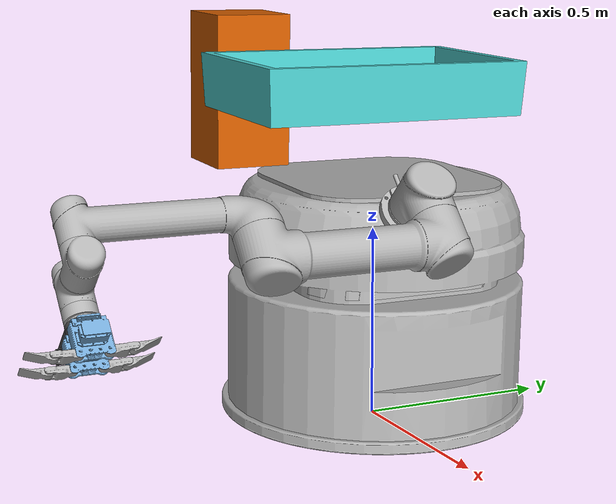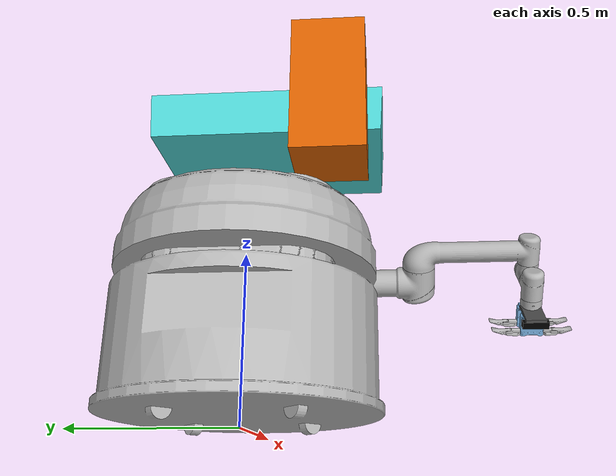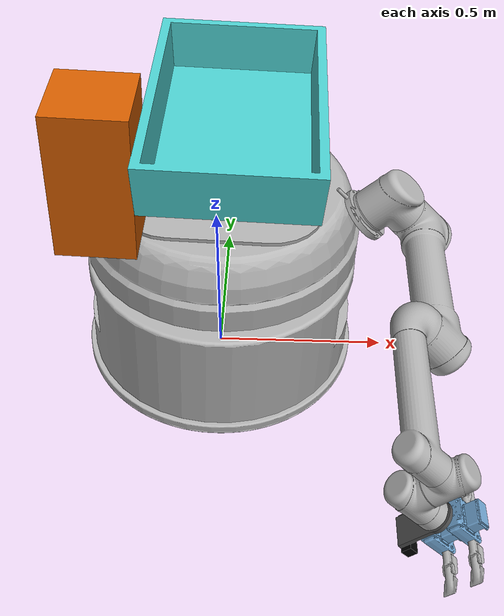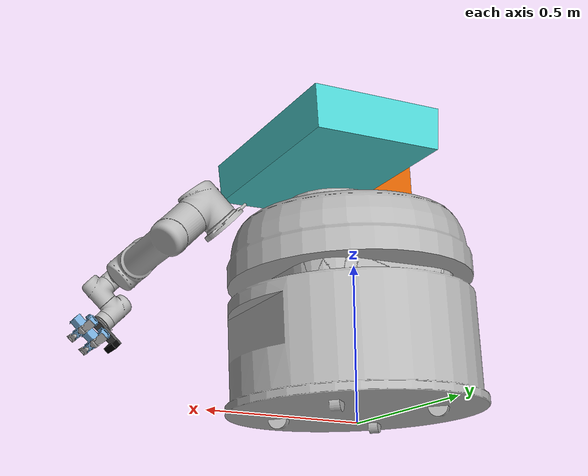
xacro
<robot xmlns:xacro="http://www.ros.org/wiki/xacro" name="daihen_ur5">

<!-- UR5 attachment type -->
<xacro:arg name="maue_ur5" default="false"/>
<xacro:arg name="mayoko_ur5" default="false"/>
<xacro:arg name="naname_ur5" default="true"/>

<property name="ur5_mount_z_offset" value="0.0"/>
<property name="ur5_base_radius" value="0.07"/>

<property name="container_mount_offset" value="0.388"/>
<property name="container_short_side" value="0.41"/>

<property name="daihen_boad_offset" value="0.25"/>

<property name="container_z_offset" value="0.169"/>
<property name="container_x_offset" value="0.0"/>

<property name="cylinder_length" value="0.0"/>

<xacro:include filename="$(find fcsc_description)/model/materials.urdf.xacro" />
<xacro:include filename="$(find fcsc_description)/model/fcsc_gazebo.xacro" />
<xacro:include filename="$(find fcsc_description)/model/container.urdf.xacro" />
<xacro:include filename="$(find fcsc_description)/model/create_box.xacro" />
<xacro:include filename="$(find fcsc_description)/model/my_ezgripper_dual_gen2.urdf.xacro"/>
<xacro:include filename="$(find ur_description)/urdf/ur5.urdf.xacro" />
<xacro:include filename="$(find fcsc_description)/model/robot.urdf.xacro" />

<!-- arm -->
<xacro:if value="$(arg naname_ur5)">
  <xacro:ur5_robot
    prefix=""
    joint_limited="true"
    elbow_joint_lower_limit="${0}" elbow_joint_upper_limit="${pi}"
    wrist_1_lower_limit="0" wrist_1_upper_limit="${2*pi}"
    />
</xacro:if>
<xacro:if value="$(arg maue_ur5)">
  <xacro:ur5_robot
    prefix=""
    joint_limited="true"
    elbow_joint_lower_limit="0" elbow_joint_upper_limit="${pi}"
    wrist_1_lower_limit="${-2*pi}" wrist_1_upper_limit="${0}"
    />
</xacro:if>

<link name="gripper_link"/>
<link name="gripper_wrap_link"/>

<!-- ezgripper dual * 2 -->
<ezgripper_dual prefix="top" parent_link="camera_attachment_1_link" mimic="false" parent_prefix="top">
  <origin xyz="${0.01 + cylinder_length} 0 ${0.065/2}" rpy="0 0 0"/>
</ezgripper_dual>
<ezgripper_dual prefix="bottom" parent_link="camera_attachment_1_link"  mimic="false" parent_prefix="bottom">
  <origin xyz="${0.01+ cylinder_length} 0 ${-0.065/2}" rpy="0 0 0"/>
</ezgripper_dual>
<joint name="gripper_link_joint" type="fixed">
  <parent link="top_ezgripper_palm_link"/>
  <child link="gripper_link"/>
  <origin xyz="0.178 0 ${-0.065/2}" rpy="0 0 0"/>
</joint>
<joint name="gripper_wrap_joint" type="fixed">
  <parent link="top_ezgripper_palm_link"/>
  <child link="gripper_wrap_link"/>
  <origin xyz="0.085 0 ${-0.065/2}" rpy="0 0 0"/>
</joint>

<xacro:use_RealSenseD435_ur5 attachment_depth="0.01" attachment_width="0.07" attachment_height="${0.1125+0.025}"/>

<joint name="arm_to_kinect" type="fixed">
  <parent link="ee_link"/>
  <child link="camera_attachment_1_link"/>
  <origin xyz="0 0 0" rpy="0 0 0"/>
</joint>

<joint name="ur5_base" type="fixed">
  <parent link="boad"/>
  <child link="base_link"/>
  <!-- NANAME -->
  <xacro:if value="$(arg naname_ur5)">
    <origin rpy="${-M_PI/4} 0 ${-M_PI/2}" xyz="${0.37556} ${-0.11} ${daihen_boad_offset-0.027279+0.005}"/>
  </xacro:if>

  <!-- MAUE -->
  <!-- Daihe Mobile Robot -->

  <!-- KDEL(F507) Demo -->
  <xacro:if value="$(arg maue_ur5)">
    <origin rpy="0 0 ${M_PI}" xyz="${0.7/2-0.24} 0 ${daihen_boad_offset+0.05}"/>
  </xacro:if>

  <!-- MAYOKO -->
  <xacro:if value="$(arg mayoko_ur5)">
    <origin rpy="${-M_PI/2} 0 ${-M_PI/2}" xyz="${0.27} ${-ur5_base_radius} ${daihen_boad_offset + ur5_base_radius}"/>
  </xacro:if>

</joint>

<!-- KDEL(F507) Demo Table -->
<xacro:if value="$(arg maue_ur5)">
  <xacro:create_box name="control_box" mass="15" x="0.7" y="0.65" z="0.69">
    <origin xyz="0 0 ${-0.69/2}" rpy="0 0 0" />
  </xacro:create_box>
  <joint name="table_fixed" type="fixed">
    <parent link="boad"/>
    <child link="control_box"/>
    <origin rpy="0 0 0" xyz="0 0 ${daihen_boad_offset+0.05}"/>
  </joint>
</xacro:if>

<!-- control box -->
<xacro:create_box name="control_box" mass="15" x="0.395" y="0.2" z="0.2">
  <origin xyz="0 0 ${0.2/2}" rpy="0 0 0" />
</xacro:create_box>
<joint name="control_box_fixed" type="fixed">
  <parent link="container"/>
  <child link="control_box"/>
  <origin rpy="0 ${M_PI/2} 0" xyz="${-0.2-0.2-0.02} ${-0.3+0.2/2} 0.03"/>
</joint>

<xacro:unless value="$(arg maue_ur5)">
  <xacro:container/>
  <joint name="container_base" type="revolute">
    <parent link="boad"/>
    <child link="container"/>
    <xacro:if value="$(arg naname_ur5)">
      <origin rpy="0 0 0" xyz="${0.54/2-container_short_side/2-0.043+0.005+0.006} ${-0.073+0.005} ${daihen_boad_offset+container_z_offset+0.008}"/>
    </xacro:if>
    <xacro:if value="$(arg maue_ur5)">
      <origin rpy="0 0 0" xyz="${-container_short_side/2} 0 ${daihen_boad_offset+container_z_offset}"/>
    </xacro:if>
    <axis xyz="0 0 1" />
    <limit lower="0" upper="0" effort="0" velocity="0"/>
    <dynamics friction="100000000000000000"/>
  </joint>
  <transmission name="container_base_trans">
    <type>transmission_interface/SimpleTransmission</type>
    <joint name="container_base">
      <hardwareInterface>hardware_interface/PositionJointInterface</hardwareInterface>
    </joint>
    <actuator name="container_base_motor">
      <hardwareInterface>hardware_interface/PositionJointInterface</hardwareInterface>
      <mechanicalReduction>1</mechanicalReduction>
    </actuator>
  </transmission>
</xacro:unless>

<gazebo>
  <plugin name="gazebo_ros_control" filename="libgazebo_ros_control.so"/>
</gazebo>

</robot>

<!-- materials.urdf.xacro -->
<robot>
  <material name="Black">
    <color rgba="0.0 0.0 0.0 1.0"/>
  </material>

  <material name="WheelBlack">
    <color rgba="${40/255} ${34/255} ${42/255} 1.0"/>
  </material>

  <material name="Blue">
    <color rgba="0.0 0.0 0.8 1.0"/>
  </material>

  <material name="SkyBlue">
    <color rgba="${116/255} ${169/255} ${214/255} 1.0"/>
  </material>

  <material name="Green">
    <color rgba="0.0 0.8 0.0 1.0"/>
  </material>

  <material name="Gray">
    <color rgba="0.7 0.7 0.7 1.0"/>
  </material>

  <material name="DarkGray">
    <color rgba="0.3 0.3 0.3 1.0"/>
  </material>

  <material name="PealGray">
    <color rgba="${140/255} ${140/255} ${140/255} 1.0"/>
  </material>

  <material name="Red">
    <color rgba="0.8 0.0 0.0 1.0"/>
  </material>

  <material name="White">
    <color rgba="1.0 1.0 1.0 1.0"/>
  </material>

  <material name="OffWhite">
    <color rgba="${255/255} ${255/255}  ${230.0/255.0} 1.0"/>
  </material>

  <material name="Milk">
    <color rgba="${180/255} ${180/255}  ${180/255} 1.0"/>
  </material>

  <material name="Yellow">
    <color rgba="0.8 0.8 0.0 1.0"/>
  </material>
</robot>

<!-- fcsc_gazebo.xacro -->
<!-- gazebo setting -->
<robot name="gazebo_setting" xmlns:xacro="http://www.ros.org/wiki/xacro">
  <xacro:macro name="use_RealSenseD435_ur5" params="attachment_height attachment_width attachment_depth">

    <link name="camera_optical_link"/>

    <link name="camera_body_link">
      <collision>
        <origin xyz="0.0 0 0" rpy="0 0 0"/>
        <geometry>
          <box size="${0.025} ${0.09} ${0.025}"/>
        </geometry>
      </collision>
      <visual>
        <origin xyz="0 0 0" rpy="0 0 0"/>
        <geometry>
          <box size="${0.025} ${0.09} ${0.025}"/>
        </geometry>
        <material name="camera_body_color">
          <color rgba="0 0 0 1.0"/>
        </material>
      </visual>
      <inertial>
        <mass value="1e-5" />
        <origin xyz="0 0 0" rpy="0 0 0"/>
        <inertia ixx="1e-6" ixy="0" ixz="0" iyy="1e-6" iyz="0" izz="1e-6" />
      </inertial>
    </link>

    <link name="camera_attachment_1_link">
      <collision>
        <origin xyz="${0.01/2} 0 ${attachment_height/2 - 0.0375}" rpy="0 0 0"/>
        <geometry>
          <box size="${attachment_depth} ${attachment_width} ${attachment_height}"/>
        </geometry>
      </collision>
      <visual>
        <origin xyz="0 0 0" rpy="0 ${pi/2.0} 0"/>
        <geometry>
          <mesh filename="package://fcsc_description/mesh/realsense_D435_mount.stl" scale="1 1 1"/>
        </geometry>
        <material name="realsense_attachment_color">
          <color rgba="0.3 0.3 0.3 1.0"/>
        </material>
      </visual>
      <inertial>
        <mass value="1e-5" />
        <origin xyz="0 0 0" rpy="0 ${pi/2.0} 0"/>
        <inertia ixx="1e-6" ixy="0" ixz="0" iyy="1e-6" iyz="0" izz="1e-6" />
      </inertial>
    </link>

    <joint name="camera_optical_joint" type="fixed">
      <parent link="camera_body_link"/>
      <child link="camera_optical_link"/>
      <origin xyz="${0.025/2} 0 0" rpy="-1.57 0 -1.57"/>
    </joint>

    <joint name="realsense_attachment_joint" type="fixed">
      <parent link="camera_attachment_1_link"/>
      <child link="camera_body_link"/>
      <origin xyz="${0.01 + 0.025/2} 0 ${0.0875}" rpy="0 0 0"/>
    </joint>

    <gazebo reference="camera_body_link">
      <selfCollide>false</selfCollide>
      <material>Gazebo/Black</material>
      <sensor type="depth" name="realsense">
        <always_on>1</always_on>
        <update_rate>10</update_rate>
        <visualize>true</visualize>
        <camera>
          <horizontal_fov>1.211222778</horizontal_fov>
          <image>
            <!-- high performance -->
            <width>640</width>
            <height>480</height>
            <format>R8G8B8</format>
          </image>
          <clip>
            <near>0.1</near>
            <far>100</far>
          </clip>
          <depth_camera>
            <output>true</output>
          </depth_camera>
        </camera>
        <plugin name="realsense_controller" filename="libgazebo_ros_openni_kinect.so">
          <alwaysOn>true</alwaysOn>
          <updateRate>10.0</updateRate>
          <cameraName>camera</cameraName>
          <frameName>camera_optical_link</frameName>
          <imageTopicName>rgb/image_raw</imageTopicName>
          <depthImageTopicName>depth/image_raw</depthImageTopicName>
          <pointCloudTopicName>depth/points</pointCloudTopicName>
          <cameraInfoTopicName>rgb/camera_info</cameraInfoTopicName>
          <depthImageCameraInfoTopicName>depth/camera_info</depthImageCameraInfoTopicName>
          <pointCloudCutoff>0.2</pointCloudCutoff>
          <pointCloudCutoffMax>5</pointCloudCutoffMax>
          <distortionK1>0.0</distortionK1>
          <distortionK2>0.0</distortionK2>
          <distortionK3>0.0</distortionK3>
          <distortionT1>0.0</distortionT1>
          <distortionT2>0.0</distortionT2>
          <CxPrime>0.0</CxPrime>
          <Cx>0.0</Cx>
          <Cy>0.0</Cy>
          <focalLength>0.0</focalLength>
        </plugin>
        </sensor>
    </gazebo>
  </xacro:macro>

  <xacro:macro name="use_hokuyo">
  <!-- *************************************** Hokuyo laser *************************************** -->
    <link name="hokuyo_link">
		  <collision>
			  <origin xyz="0 0 0" rpy="0 0 0"/>
			  <geometry>
				  <cylinder length="0.05" radius="0.025"/>
			  </geometry>
		  </collision>
		  <visual>
			  <origin xyz="0 0 0" rpy="0 0 0"/>
			  <geometry>
				  <cylinder length="0.05" radius="0.025"/>
			  </geometry>
		  </visual>
		  <inertial>
			  <mass value="1e-5" />
			  <origin xyz="0 0 0" rpy="0 0 0"/>
			  <inertia ixx="1e-6" ixy="0" ixz="0" iyy="1e-6" iyz="0" izz="1e-6" />
		  </inertial>
    </link>
    <joint name="hokuyo_joint" type="fixed">
		  <!--parent link="base_link"/-->
		  <parent link="riser"/>
		  <child link="hokuyo_link"/>
		  <!--origin xyz="0.13 0 0.15" rpy="0 0 0"/-->
		  <origin xyz="0.025 0 0.3" rpy="0 0 0"/>
    </joint>
	  <gazebo reference="hokuyo_link">
		  <material>Gazebo/Black</material>
		  <sensor type="ray" name="laser">
			  <pose>0 0 0 0 0 0</pose>
			  <visualize>true</visualize>
			  <update_rate>40</update_rate>
			  <ray>
				  <scan>
					  <horizontal>
						  <samples>720</samples>
						  <resolution>1</resolution>
						  <min_angle>-1.570796327</min_angle>
						  <max_angle>1.570796327</max_angle>
					  </horizontal>
				  </scan>
				  <range>
					  <min>0.10</min>
					  <max>10.0</max>
					  <resolution>0.01</resolution>
				  </range>
				  <noise>
					  <type>Gaussian</type>
					  <mean>0.0</mean>
					  <stddev>0.01</stddev>
				  </noise>
			  </ray>
			  <plugin name="hokuyo_laser" filename="libgazebo_ros_laser.so">
				  <topicName>/scan</topicName>
				  <frameName>hokuyo_link</frameName>
			  </plugin>
		  </sensor>
	  </gazebo>
	</xacro:macro>

  <xacro:macro name="use_hokuyo_vertical">
  <!-- ***************************** Hokuyo Vertical laser ********************************** -->
    <link name="hokuyo_vertical_link">
		  <collision>
			  <origin xyz="0 0 0" rpy="0 0 0"/>
			  <geometry>
				  <cylinder length="0.05" radius="0.025"/>
			  </geometry>
		  </collision>
		  <visual>
			  <origin xyz="0 0 0" rpy="0 0 0"/>
			  <geometry>
				  <cylinder length="0.05" radius="0.025"/>
			  </geometry>
		  </visual>
		  <inertial>
			  <mass value="1e-5" />
			  <origin xyz="0 0 0" rpy="0 0 0"/>
			  <inertia ixx="1e-6" ixy="0" ixz="0" iyy="1e-6" iyz="0" izz="1e-6" />
		  </inertial>
    </link>
    <joint name="hokuyo_vertical_joint" type="fixed">
		  <parent link="riser"/>
		  <child link="hokuyo_vertical_link"/>
		  <origin xyz="0.025 0 0.5" rpy="0 1.57079 0"/>
    </joint>
	  <gazebo reference="hokuyo_vertical_link">
		  <material>Gazebo/Black</material>
		  <sensor type="ray" name="vertical_laser">
			  <pose>0 0 0 0 0 0</pose>
			  <visualize>true</visualize>
			  <update_rate>40</update_rate>
			  <ray>
				  <scan>
					  <horizontal>
						  <samples>720</samples>
						  <resolution>1</resolution>
						  <min_angle>-1.570796327</min_angle>
						  <max_angle>1.570796327</max_angle>
					  </horizontal>
				  </scan>
				  <range>
					  <min>0.10</min>
					  <max>10.0</max>
					  <resolution>0.01</resolution>
				  </range>
				  <noise>
					  <type>Gaussian</type>
					  <mean>0.0</mean>
					  <stddev>0.01</stddev>
				  </noise>
			  </ray>
			  <plugin name="hokuyo_vertical_laser" filename="libgazebo_ros_laser.so">
				  <topicName>/vertical_scan</topicName>
				  <frameName>hokuyo_vertical_link</frameName>
			  </plugin>
		  </sensor>
	  </gazebo>
	</xacro:macro>

	<xacro:macro name="use_kinect_arm">
	<!-- ********************************** Kinect [arm or gripper] ***************************************** -->
	  <joint name="kinect_arm_joint" type="fixed">
		  <parent link="link6"/>
		  <child link="kinect_base_link"/>
		  <!--origin xyz="0.5 0 0.2" rpy="0 0 0"/-->
		  <origin xyz="0 0 ${0.1/2}" rpy="0 0 0"/>
	  </joint>

	  <joint name="kinect_joint" type="fixed">
		  <parent link="kinect_base_link"/>
		  <child link="kinect_link"/>
		  <origin xyz="0 0 0" rpy="-1.57 0 -1.57"/>
	  </joint>

	  <link name="kinect_base_link">
		  <collision>
			  <origin xyz="0 0 0" rpy="0 0 0"/>
			  <geometry>
				  <cylinder length="0.05" radius="0.025"/>
			  </geometry>
		  </collision>
		  <visual>
			  <origin xyz="0 0 0" rpy="0 0 0"/>
			  <geometry>
				  <cylinder length="0.05" radius="0.025"/>
			  </geometry>
		  </visual>
		  <inertial>
			  <mass value="1e-5" />
			  <origin xyz="0 0 0" rpy="0 0 0"/>
			  <inertia ixx="1e-6" ixy="0" ixz="0" iyy="1e-6" iyz="0" izz="1e-6" />
		  </inertial>
	  </link>

	  <link name="kinect_link"/>

	  <gazebo reference="kinect_base_link">
      <selfCollide>false</selfCollide>
		  <material>Gazebo/Black</material>
		  <sensor type="depth" name="kinect">
			  <always_on>1</always_on>
			  <visualize>true</visualize>
			  <camera>
			  <horizontal_fov>1.047</horizontal_fov>
			  <image>
				  <width>640</width>
				  <height>480</height>
				  <format>R8G8B8</format>
			  </image>
			  <clip>
				  <near>0.1</near>
				  <far>100</far>
			  </clip>
			  </camera>
			  <plugin name="kinect_controller" filename="libgazebo_ros_openni_kinect.so">
				  <alwaysOn>true</alwaysOn>
				  <updateRate>10.0</updateRate>
				  <cameraName>kinect</cameraName>
				  <frameName>kinect_link</frameName>
				  <imageTopicName>rgb/image_raw</imageTopicName>
				  <depthImageTopicName>depth/image_raw</depthImageTopicName>
				  <pointCloudTopicName>depth/points</pointCloudTopicName>
				  <cameraInfoTopicName>rgb/camera_info</cameraInfoTopicName>
				  <depthImageCameraInfoTopicName>depth/camera_info</depthImageCameraInfoTopicName>
				  <pointCloudCutoff>0.4</pointCloudCutoff>
				  <hackBaseline>0.07</hackBaseline>
				  <distortionK1>0.0</distortionK1>
				  <distortionK2>0.0</distortionK2>
				  <distortionK3>0.0</distortionK3>
				  <distortionT1>0.0</distortionT1>
				  <distortionT2>0.0</distortionT2>
				  <CxPrime>0.0</CxPrime>
				  <Cx>0.0</Cx>
				  <Cy>0.0</Cy>
				  <focalLength>0.0</focalLength>
			  </plugin>
			  </sensor>
	  </gazebo>
	</xacro:macro>

	<xacro:macro name="use_kinect_riser">
	<!-- ********************************** Kinect [riser] ***************************************** -->
	  <joint name="kinect_riser_joint" type="fixed">
		  <parent link="riser"/>
		  <child link="kinect_base_link2"/>
		  <origin xyz="0.025 0 0.5" rpy="0 0 0"/>
	  </joint>
	  <joint name="kinect_joint2" type="fixed">
		  <parent link="kinect_base_link2"/>
		  <child link="kinect_link2"/>
		  <origin xyz="0 0 0" rpy="-1.57 0 -1.57"/>
	  </joint>

	  <link name="kinect_base_link2">
		  <collision>
			  <origin xyz="0 0 0" rpy="0 0 0"/>
			  <geometry>
				  <cylinder length="0.05" radius="0.025"/>
			  </geometry>
		  </collision>
		  <visual>
			  <origin xyz="0 0 0" rpy="0 0 0"/>
			  <geometry>
				  <cylinder length="0.05" radius="0.025"/>
			  </geometry>
		  </visual>
		  <inertial>
			  <mass value="1e-5" />
			  <origin xyz="0 0 0" rpy="0 0 0"/>
			  <inertia ixx="1e-6" ixy="0" ixz="0" iyy="1e-6" iyz="0" izz="1e-6" />
		  </inertial>
	  </link>

	  <link name="kinect_link2"/>

	  <gazebo reference="kinect_base_link2">
		  <material>Gazebo/Black</material>
		  <sensor type="depth" name="kinect2">
			  <always_on>1</always_on>
			  <visualize>true</visualize>
			  <camera>
			  <horizontal_fov>1.047</horizontal_fov>
			  <image>
				  <width>640</width>
				  <height>480</height>
				  <format>R8G8B8</format>
			  </image>
			  <clip>
				  <near>0.1</near>
				  <far>100</far>
			  </clip>
			  </camera>
			  <plugin name="kinect_controller_for_riser" filename="libgazebo_ros_openni_kinect.so">
				  <alwaysOn>true</alwaysOn>
				  <updateRate>10.0</updateRate>
				  <cameraName>kinect2</cameraName>
				  <frameName>kinect_link2</frameName>
				  <imageTopicName>rgb/image_raw</imageTopicName>
				  <depthImageTopicName>depth/image_raw</depthImageTopicName>
				  <pointCloudTopicName>depth/points</pointCloudTopicName>
				  <cameraInfoTopicName>rgb/camera_info</cameraInfoTopicName>
				  <depthImageCameraInfoTopicName>depth/camera_info</depthImageCameraInfoTopicName>
				  <pointCloudCutoff>0.4</pointCloudCutoff>
				  <hackBaseline>0.07</hackBaseline>
				  <distortionK1>0.0</distortionK1>
				  <distortionK2>0.0</distortionK2>
				  <distortionK3>0.0</distortionK3>
				  <distortionT1>0.0</distortionT1>
				  <distortionT2>0.0</distortionT2>
				  <CxPrime>0.0</CxPrime>
				  <Cx>0.0</Cx>
				  <Cy>0.0</Cy>
				  <focalLength>0.0</focalLength>
			  </plugin>
			  </sensor>
	  </gazebo>
  </xacro:macro>

	<xacro:macro name="use_kinect_ancle">
	<!-- ********************************** Kinect [arm or gripper] ***************************************** -->
	  <joint name="kinect_ancle_joint" type="fixed">
		  <parent link="link6"/>
		  <child link="kinect_base_link"/>
		  <origin xyz="${0.05/2} 0 ${0.04/2}" rpy="0 0 0"/>
	  </joint>

	  <joint name="kinect_joint" type="fixed">
		  <parent link="kinect_base_link"/>
		  <child link="kinect_link"/>
		  <origin xyz="0 0 0" rpy="-1.57 0 -1.57"/>
	  </joint>

	  <link name="kinect_base_link">
		  <collision>
			  <origin xyz="0 0 ${0.05/2}" rpy="0 0 0"/>
			  <geometry>
				  <cylinder length="0.05" radius="0.025"/>
			  </geometry>
		  </collision>
		  <visual>
			  <origin xyz="0 0 ${0.05/2}" rpy="0 0 0"/>
			  <geometry>
				  <cylinder length="0.05" radius="0.025"/>
			  </geometry>
		  </visual>
		  <inertial>
			  <mass value="1e-5" />
			  <origin xyz="0 0 ${0.05/2}" rpy="0 0 0"/>
			  <inertia ixx="1e-6" ixy="0" ixz="0" iyy="1e-6" iyz="0" izz="1e-6" />
		  </inertial>
	  </link>

	  <link name="kinect_link"/>

	  <gazebo reference="kinect_base_link">
      <selfCollide>false</selfCollide>
		  <material>Gazebo/Black</material>
		  <sensor type="depth" name="kinect">
			  <always_on>1</always_on>
			  <visualize>true</visualize>
			  <camera>
			  <horizontal_fov>1.047</horizontal_fov>
			  <image>
				  <width>640</width>
				  <height>480</height>
				  <format>R8G8B8</format>
			  </image>
			  <clip>
				  <near>0.1</near>
				  <far>100</far>
			  </clip>
			  </camera>
			  <plugin name="kinect_controller" filename="libgazebo_ros_openni_kinect.so">
				  <alwaysOn>true</alwaysOn>
				  <updateRate>10.0</updateRate>
				  <cameraName>kinect</cameraName>
				  <frameName>kinect_link</frameName>
				  <imageTopicName>rgb/image_raw</imageTopicName>
				  <depthImageTopicName>depth/image_raw</depthImageTopicName>
				  <pointCloudTopicName>depth/points</pointCloudTopicName>
				  <cameraInfoTopicName>rgb/camera_info</cameraInfoTopicName>
				  <depthImageCameraInfoTopicName>depth/camera_info</depthImageCameraInfoTopicName>
				  <pointCloudCutoff>0.4</pointCloudCutoff>
				  <hackBaseline>0.07</hackBaseline>
				  <distortionK1>0.0</distortionK1>
				  <distortionK2>0.0</distortionK2>
				  <distortionK3>0.0</distortionK3>
				  <distortionT1>0.0</distortionT1>
				  <distortionT2>0.0</distortionT2>
				  <CxPrime>0.0</CxPrime>
				  <Cx>0.0</Cx>
				  <Cy>0.0</Cy>
				  <focalLength>0.0</focalLength>
			  </plugin>
			  </sensor>
	  </gazebo>
	</xacro:macro>

  <!-- realsense -->
  <property name="kinect_height" value="0.025" />
  <property name="kinect_width" value="0.13" />
  <property name="kinect_depth" value="0.016" />

	<xacro:macro name="use_RealSenseSR300_ur5" params="attachment_height attachment_width attachment_depth">
	<!-- ********************************** Kinect [arm or gripper] ***************************************** -->

    <link name="camera_optical_link"/>
	  <joint name="kinect_joint" type="fixed">
      <parent link="camera_body_link"/>
      <child link="camera_optical_link"/>
		  <origin xyz="0 0 0" rpy="-1.57 0 -1.57"/>
	  </joint>

	  <link name="camera_body_link">
		  <collision>
			  <origin xyz="0.005 0 0" rpy="0 0 0"/>
			  <geometry>
          <box size="${kinect_depth-0.005} ${kinect_width} ${kinect_height}"/>
			  </geometry>
		  </collision>
		  <visual>
			  <origin xyz="0 0 0" rpy="0 0 0"/>
			  <geometry>
          <box size="${kinect_depth} ${kinect_width} ${kinect_height}"/>
			  </geometry>
        <material name="camera_body_color">
          <color rgba="0 0 0 1.0"/>
        </material>
		  </visual>
		  <inertial>
			  <mass value="1e-5" />
			  <origin xyz="0 0 0" rpy="0 0 0"/>
			  <inertia ixx="1e-6" ixy="0" ixz="0" iyy="1e-6" iyz="0" izz="1e-6" />
		  </inertial>
	  </link>

    <link name="camera_attachment_3_link">
      <collision>
			  <origin xyz="${0.06/2} 0 ${0.035/2}" rpy="0 0 0"/>
			  <geometry>
          <box size="0.06 0.07 0.035 "/>
			  </geometry>
		  </collision>
		  <visual>
			  <origin xyz="${0.06/2} 0 ${0.035/2}" rpy="0 0 0"/>
			  <geometry>
          <box size="0.06 0.07 0.035"/>
			  </geometry>
        <material name="kinect_attachment_color">
          <color rgba="0.3 0.3 0.3 1.0"/>
        </material>
		  </visual>
		  <inertial>
			  <mass value="1e-5" />
			  <origin xyz="${0.06/2} 0 ${0.035/2}" rpy="0 0 0"/>
			  <inertia ixx="1e-6" ixy="0" ixz="0" iyy="1e-6" iyz="0" izz="1e-6" />
		  </inertial>
    </link>
    <joint name="realsense_mount_joint" type="fixed">
      <parent link="camera_attachment_2_link"/>
      <child link="camera_attachment_3_link"/>
      <origin xyz="${0.0065} 0 ${0.025/2.0}" rpy="0 0 0"/>
    </joint>

    <link name="camera_attachment_2_link">
      <collision>
			  <origin xyz="0 0 0" rpy="0 ${pi/2.0} 0"/>
			  <geometry>
          <mesh filename="package://fcsc_description/mesh/realsense_mount_small_1.stl" scale="1 1 1"/>
			  </geometry>
		  </collision>
		  <visual>
			  <origin xyz="0 0 0" rpy="0 ${pi/2.0} 0"/>
			  <geometry>
          <mesh filename="package://fcsc_description/mesh/realsense_mount_small_1.stl" scale="1 1 1"/>
			  </geometry>
        <material name="kinect_attachment_color">
          <color rgba="0.3 0.3 0.3 1.0"/>
        </material>
		  </visual>
		  <inertial>
			  <mass value="1e-5" />
			  <origin xyz="0 0 0" rpy="0 ${pi/2.0} 0"/>
			  <inertia ixx="1e-6" ixy="0" ixz="0" iyy="1e-6" iyz="0" izz="1e-6" />
		  </inertial>
    </link>
    <joint name="kinect_mount_joint" type="fixed">
      <parent link="camera_attachment_1_link"/>
      <child link="camera_attachment_2_link"/>
      <origin xyz="0.01 0 ${0.1125 - 0.0375 - 0.025/2.0}" rpy="0 0 0"/>
    </joint>

	  <link name="camera_attachment_1_link">
		  <collision>
			  <origin xyz="${0.01/2} 0 ${attachment_height/2 - 0.0375}" rpy="0 0 0"/>
			  <geometry>
          <box size="${attachment_depth} ${attachment_width} ${attachment_height}"/>
			  </geometry>
		  </collision>
		  <visual>
        <origin xyz="0 0 0" rpy="0 ${pi/2.0} 0"/>
			  <geometry>
          <mesh filename="package://fcsc_description/mesh/realsense_mount_small_2.stl" scale="1 1 1"/>
			  </geometry>
        <material name="kinect_attachment_color">
          <color rgba="0.3 0.3 0.3 1.0"/>
        </material>
		  </visual>
		  <inertial>
			  <mass value="1e-5" />
        <origin xyz="0 0 0" rpy="0 ${pi/2.0} 0"/>
			  <inertia ixx="1e-6" ixy="0" ixz="0" iyy="1e-6" iyz="0" izz="1e-6" />
		  </inertial>
	  </link>

      <!-- realsense -->

    <joint name="kinect_attachment_joint" type="fixed">
      <parent link="camera_attachment_3_link"/>
      <child link="camera_body_link"/>
      <origin xyz="${0.06+kinect_depth/2} 0 ${kinect_height/2+0.0175}" rpy="0 0 0"/>
    </joint>

    <gazebo reference="camera_body_link">
      <selfCollide>false</selfCollide>
		  <material>Gazebo/Black</material>
		  <sensor type="depth" name="kinect">
			  <always_on>1</always_on>
        <update_rate>10</update_rate>
			  <visualize>true</visualize>
        <camera>
          <horizontal_fov>1.186823891356144</horizontal_fov>
          <image>
            <!-- high performance -->
            <width>1920</width>
            <height>1080</height>
            <format>R8G8B8</format>
          </image>
          <clip>
            <near>0.1</near>
            <far>100</far>
          </clip>
          <depth_camera>
            <output>true</output>
          </depth_camera>
        </camera>
			  <plugin name="realsense_controller" filename="libgazebo_ros_openni_kinect.so">
				  <alwaysOn>true</alwaysOn>
				  <updateRate>10.0</updateRate>
				  <cameraName>camera</cameraName>
				  <frameName>camera_optical_link</frameName>
				  <imageTopicName>rgb/image_raw</imageTopicName>
				  <depthImageTopicName>depth/image_raw</depthImageTopicName>
				  <pointCloudTopicName>depth/points</pointCloudTopicName>
				  <cameraInfoTopicName>rgb/camera_info</cameraInfoTopicName>
				  <depthImageCameraInfoTopicName>depth/camera_info</depthImageCameraInfoTopicName>
          <pointCloudCutoff>0.2</pointCloudCutoff>
          <pointCloudCutoffMax>1.5</pointCloudCutoffMax>
				  <distortionK1>0.0</distortionK1>
				  <distortionK2>0.0</distortionK2>
				  <distortionK3>0.0</distortionK3>
				  <distortionT1>0.0</distortionT1>
				  <distortionT2>0.0</distortionT2>
				  <CxPrime>0.0</CxPrime>
				  <Cx>0.0</Cx>
				  <Cy>0.0</Cy>
				  <focalLength>0.0</focalLength>
			  </plugin>
			  </sensor>
	  </gazebo>
	</xacro:macro>

	<!--  ********************************  gripper ********************************  -->

  <xacro:macro name="use_imu">
<!-- ******************************** IMU ******************************** -->
    <link name="imu_link">
		  <inertial>
			  <mass value="1e-5" />
			  <origin xyz="0 0 0" rpy="0 0 0"/>
			  <inertia ixx="1e-6" ixy="0" ixz="0" iyy="1e-6" iyz="0" izz="1e-6" />
		  </inertial>
      <collision>
        <origin xyz="0 0 0" />
        <geometry>
          <box size="0.01 0.01 0.01"/>
        </geometry>
      </collision>
      <visual>
        <origin xyz="0 0 0" />
        <geometry>
          <box size="0.01 0.01 0.01" />
        </geometry>
        <material name="orange" />
      </visual>
    </link>
    <joint name="imu_joint" type="fixed">
      <axis xyz="1 0 0"/>
      <parent link="base_link"/>
      <child link="imu_link"/>
      <origin xyz="-0.152 0 0" ryp="0 0 0"/>
    </joint>
    <gazebo>
      <plugin name="imu" filename="libhector_gazebo_ros_imu.so">
        <updateRate>1000</updateRate>
        <bodyName>imu_link</bodyName>
        <topicName>/imu</topicName>
        <serviceName>/imu/calibrate</serviceName>
        <accelOffset>0.0 0.0 0.0</accelOffset>
        <accelDrift>0.0 0.0 0.0</accelDrift>
        <accelDriftFrequency>0.0 0.0 0.0</accelDriftFrequency>
        <accelGaussianNoise>0.0 0.0 0.0</accelGaussianNoise>
        <rateOffset>0.0 0.0 0.0</rateOffset>
        <rateDrift>0.0 0.0 0.0</rateDrift>
        <rateDriftFrequency>0.0 0.0 0.0</rateDriftFrequency>
        <rateGaussianNoise>0.0 0.0 0.0</rateGaussianNoise>
        <headingOffset>0.0</headingOffset>
        <headingDrift>0.0</headingDrift>
        <headingDriftFrequency>0.0</headingDriftFrequency>
        <headingGaussianNoise>0.0</headingGaussianNoise>
        <rpyOffset>0.0 0.0 0.0</rpyOffset>
        <xyzOffset>0.0 0.0 0.0</xyzOffset>
        <gaussianNoise>0.0</gaussianNoise>
      </plugin>
    </gazebo>
  </xacro:macro>

  <xacro:macro name="use_torque">
<!-- ************************ Show Torque ***************************** -->
	  <gazebo reference="arm_riser">
		  <provideFeedback>1</provideFeedback>
	  </gazebo>
	  <gazebo reference="joint1">
		  <provideFeedback>1</provideFeedback>
	  </gazebo>
	  <gazebo reference="joint2">
		  <provideFeedback>1</provideFeedback>
	  </gazebo>
	  <gazebo reference="joint3">
		  <provideFeedback>1</provideFeedback>
	  </gazebo>
	  <gazebo reference="joint4">
		  <provideFeedback>1</provideFeedback>
	  </gazebo>
	  <gazebo reference="joint5">
		  <provideFeedback>1</provideFeedback>
	  </gazebo>
	  <gazebo reference="joint6">
		  <provideFeedback>1</provideFeedback>
	  </gazebo>
	  <gazebo reference="joint7">
		  <provideFeedback>1</provideFeedback>
	  </gazebo>
    <gazebo>
	    <plugin name="arm_riser_ft" filename="libgazebo_ros_ft_sensor.so">
	      <robotNamespace>/dulcinea_mini_7dof_arm/arm_riser</robotNamespace>
	      <jointName>arm_riser</jointName>
	      <topicName>force_torque</topicName>
	      <gaussianNoise>0.0</gaussianNoise>
	      <updateRate>100.0</updateRate>
	    </plugin>
	    <plugin name="joint1_ft" filename="libgazebo_ros_ft_sensor.so">
	      <robotNamespace>/dulcinea_mini_7dof_arm/joint1</robotNamespace>
	      <jointName>joint1</jointName>
	      <topicName>force_torque</topicName>
	      <gaussianNoise>0.0</gaussianNoise>
	      <updateRate>100.0</updateRate>
	    </plugin>
	    <plugin name="joint2_ft" filename="libgazebo_ros_ft_sensor.so">
	      <robotNamespace>/dulcinea_mini_7dof_arm/joint2</robotNamespace>
	      <jointName>joint2</jointName>
	      <topicName>force_torque</topicName>
	      <gaussianNoise>0.0</gaussianNoise>
	      <updateRate>100.0</updateRate>
	    </plugin>
	    <plugin name="joint3_ft" filename="libgazebo_ros_ft_sensor.so">
	      <robotNamespace>/dulcinea_mini_7dof_arm/joint3</robotNamespace>
	      <jointName>joint3</jointName>
	      <topicName>force_torque</topicName>
	      <gaussianNoise>0.0</gaussianNoise>
	      <updateRate>100.0</updateRate>
	    </plugin>
	    <plugin name="joint4_ft" filename="libgazebo_ros_ft_sensor.so">
	      <robotNamespace>/dulcinea_mini_7dof_arm/joint4</robotNamespace>
	      <jointName>joint4</jointName>
	      <topicName>force_torque</topicName>
	      <gaussianNoise>0.0</gaussianNoise>
	      <updateRate>100.0</updateRate>
	    </plugin>
	    <plugin name="joint5_ft" filename="libgazebo_ros_ft_sensor.so">
	      <robotNamespace>/dulcinea_mini_7dof_arm/joint5</robotNamespace>
	      <jointName>joint5</jointName>
	      <topicName>force_torque</topicName>
	      <gaussianNoise>0.0</gaussianNoise>
	      <updateRate>100.0</updateRate>
	    </plugin>
	    <plugin name="joint6_ft" filename="libgazebo_ros_ft_sensor.so">
	      <robotNamespace>/dulcinea_mini_7dof_arm/joint6</robotNamespace>
	      <jointName>joint6</jointName>
	      <topicName>force_torque</topicName>
	      <gaussianNoise>0.0</gaussianNoise>
	      <updateRate>100.0</updateRate>
	    </plugin>
	    <plugin name="joint7_ft" filename="libgazebo_ros_ft_sensor.so">
	      <robotNamespace>/dulcinea_mini_7dof_arm/joint7</robotNamespace>
	      <jointName>joint7</jointName>
	      <topicName>force_torque</topicName>
	      <gaussianNoise>0.0</gaussianNoise>
	      <updateRate>100.0</updateRate>
	    </plugin>
	  </gazebo>
	</xacro:macro>
</robot>

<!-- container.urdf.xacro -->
<robot xmlns:xacro="http://www.ros.org/wiki/xacro" name="container">
  <property name="container_mass" value="1.7" />
  <property name="control_box_mass" value="15" />
  <xacro:macro name="container">
    <link name="container">
      <inertial>
        <origin xyz="0 0 0"/>
        <mass value="${container_mass + control_box_mass}"/>
        <inertia ixx="1" ixy="0" ixz="0" iyy="1" iyz="0" izz="1"/>
      </inertial>
      <collision>
        <origin xyz="0 0 0"/>
        <geometry>
          <mesh filename="package://fcsc_description/mesh/container.stl" scale="1 1 1"/>
        </geometry>
      </collision>
      <visual>
        <origin xyz="0 0 0"/>
        <geometry>
          <mesh filename="package://fcsc_description/mesh/container.stl" scale="1 1 1"/>
        </geometry>
        <material name="container_blue">
          <color rgba="0.3 0.815 0.815 1.0"/>
        </material>
      </visual>
    </link>
    <gazebo reference="container">
      <mu1 value="100000000"/>
      <mu2 value="100000000"/>
      <material>Gazebo/Blue</material>
      <turnGravityOff>false</turnGravityOff>
      <selfCollide>false</selfCollide>
    </gazebo>
  </xacro:macro>
</robot>

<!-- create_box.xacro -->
<robot xmlns:xacro="http://www.ros.org/wiki/xacro" name="common">
  <xacro:macro name="create_box" params="name mass x y z *origin visual:=true">
    <link name="${name}">
      <inertial>
        <mass value="${mass}"/>
        <xacro:insert_block name="origin" />
        <inertia  ixx="${mass*(y*y+z*z)/12}" ixy = "0" ixz = "0"
                  iyy="${mass*(x*x+z*z)/12}" iyz = "0"
                  izz="${mass*(x*x+y*y)/12}" />
      </inertial>
      <collision>
        <xacro:insert_block name="origin"/>
        <geometry>
          <box size="${x} ${y} ${z}"/>
        </geometry>
      </collision>
      <xacro:if value="${visual}">
        <visual>
          <xacro:insert_block name="origin"/>
          <geometry>
            <box size="${x} ${y} ${z}"/>
          </geometry>
        </visual>
      </xacro:if>
    </link>
  </xacro:macro>
  <!-- example -->
</robot>

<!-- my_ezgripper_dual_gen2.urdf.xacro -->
<robot name="ezgripper" xmlns:xacro="http://www.ros.org/wiki/xacro">

<!--macro name="ezgripper" params="*origin"-->

<macro name="ezgripper_dual" params="prefix parent_link *origin mimic parent_prefix">

    <!-- links -->

    <link name="${prefix}_ezgripper_palm_link">
      <visual>
        <origin xyz="0 0 0" rpy="0 0 0"/>
        <geometry>
          <mesh filename="package://ezgripper_driver/meshes/ezgripper_gen2/SAKE_Palm_Dual_Gen2.stl"/>
        </geometry>
        <material name="SkyBlue" />
      </visual>
      <collision>
        <origin xyz="0 0 0" rpy="0 0 0"/>
        <geometry>
          <mesh filename="package://ezgripper_driver/meshes/ezgripper_gen2/SAKE_Palm_Dual_Gen2.stl"/>
        </geometry>
      </collision>
    <inertial>
      <mass value=".3"/>
      <inertia ixx="0.01" ixy="0.0" ixz="0.0" iyy="0.01" iyz="0.0" izz="0.01"/>
    </inertial>
    </link>

    <joint name="${prefix}_ezgripper_connect" type="fixed">
        <xacro:insert_block name="origin" />
        <parent link="${parent_link}"/>
        <child link="${prefix}_ezgripper_palm_link"/>
        <axis xyz="0 0 0"/>
    </joint>

    <ezgripper_finger_L1 prefix="${prefix}" postfix="1" reflect="1" />
    <ezgripper_finger_L1 prefix="${prefix}" postfix="2" reflect="1" />

    <ezgripper_finger_L2 prefix="${prefix}" postfix="1" reflect="1" />
    <ezgripper_finger_L2 prefix="${prefix}" postfix="2" reflect="1" />

    <xacro:unless value="${mimic}">
      <ezgripper_knuckle_palm_L1 prefix="${prefix}" postfix="1" reflectY="1" reflectZ="1" reflectR="1" mimic_test="false"/>
      <ezgripper_knuckle_palm_L1 prefix="${prefix}" postfix="2" reflectY="-1" reflectZ="1" reflectR="-1" mimic_test="true"/>

      <ezgripper_knuckle_L1_L2 prefix="${prefix}" postfix="1" reflectY="1" reflectZ="1" reflectR="-1" mimic_test="false"/>
      <ezgripper_knuckle_L1_L2 prefix="${prefix}" postfix="2" reflectY="-1" reflectZ="1" reflectR="1" mimic_test="true"/>

      <ezgripper_knuckle_trans prefix="${prefix}" postfix="1"/>
      <ezgripper_knuckle_L1_L2_trans prefix="${prefix}" postfix="1"/>
    </xacro:unless>
    <xacro:if value="${mimic}">
      <ezgripper_knuckle_palm_L1_mimic prefix="${prefix}" postfix="1" reflectY="1" reflectZ="1" reflectR="1" parent_prefix="${parent_prefix}"/>
      <ezgripper_knuckle_palm_L1_mimic prefix="${prefix}" postfix="2" reflectY="-1" reflectZ="1" reflectR="-1" parent_prefix="${parent_prefix}"/>

      <ezgripper_knuckle_L1_L2_mimic prefix="${prefix}" postfix="1" reflectY="1" reflectZ="1" reflectR="-1" parent_prefix="${parent_prefix}"/>
      <ezgripper_knuckle_L1_L2_mimic prefix="${prefix}" postfix="2" reflectY="-1" reflectZ="1" reflectR="1" parent_prefix="${parent_prefix}"/>
    </xacro:if>
</macro>

<macro name="ezgripper_finger_L1" params="prefix postfix reflect">
    <link name="${prefix}_ezgripper_finger_L1_${postfix}">
      <visual>
        <origin xyz="0 0 0" rpy="0 0 0"/>
        <geometry>
          <mesh filename="package://ezgripper_driver/meshes/ezgripper_gen2/SAKE_Finger_L1_Gen2.stl"/>
        </geometry>
        <material name="Gray" />
      </visual>
      <collision>
        <origin xyz="0 0 0" rpy="0 0 0"/>
        <geometry>
          <mesh filename="package://ezgripper_driver/meshes/ezgripper_gen2/SAKE_Finger_L1_Gen2.stl"/>
        </geometry>
      </collision>
      <inertial>
        <mass value=".025"/>
        <inertia ixx="0.01" ixy="0.0" ixz="0.0" iyy="0.01" iyz="0.0" izz="0.01"/>
      </inertial>
    </link>
</macro>

<macro name="ezgripper_finger_L2" params="prefix postfix reflect">
    <link name="${prefix}_ezgripper_finger_L2_${postfix}">
      <visual>
        <origin xyz="0 0 0" rpy="0 0 0"/>
        <geometry>
          <mesh filename="package://ezgripper_driver/meshes/ezgripper_gen2/SAKE_Finger_L2_Gen2.stl"/>
        </geometry>
        <material name="Gray" />
      </visual>
      <collision>
        <origin xyz="0 0 0" rpy="0 0 0"/>
        <geometry>
          <mesh filename="package://ezgripper_driver/meshes/ezgripper_gen2/SAKE_Finger_L2_Gen2.stl"/>
        </geometry>
      </collision>
      <inertial>
        <mass value=".025"/>
        <inertia ixx="0.01" ixy="0.0" ixz="0.0" iyy="0.01" iyz="0.0" izz="0.01"/>
      </inertial>
    </link>
</macro>

    <!-- joints -->

  <macro name="ezgripper_knuckle_palm_L1_mimic" params="prefix postfix reflectY reflectZ reflectR parent_prefix">
    <joint name="${prefix}_ezgripper_knuckle_palm_L1_${postfix}" type="continuous">
      <parent link="${prefix}_ezgripper_palm_link"/>
      <child link="${prefix}_ezgripper_finger_L1_${postfix}"/>
      <origin xyz="0.072569 ${reflectY*0.03} 0" rpy="${-1.5708 * reflectR} 0 ${1.57075 * reflectR}"/>
      <axis xyz="0 1 0"/>
      <limit lower="-3.14" upper="3.14" effort="1" velocity="3.67"/>
      <mimic joint="${parent_prefix}_ezgripper_knuckle_palm_L1_1"/>
    </joint>
    <gazebo>
      <plugin filename="libroboticsgroup_gazebo_mimic_joint_plugin.so" name="mimic_${prefix}_ezgripper_knuckle_palm_L1_${postfix}">
        <joint>${parent_prefix}_ezgripper_knuckle_palm_L1_1</joint>
        <mimicJoint>${prefix}_ezgripper_knuckle_palm_L1_${postfix}</mimicJoint>
        <multiplier>1.0</multiplier>
        <offset>0.0</offset>
      </plugin>
    </gazebo>
  </macro>

  <macro name="ezgripper_knuckle_L1_L2_mimic" params="prefix postfix reflectY reflectZ reflectR parent_prefix">
    <joint name="${prefix}_ezgripper_knuckle_L1_L2_${postfix}" type="continuous">
      <parent link="${prefix}_ezgripper_finger_L1_${postfix}"/>
      <child link="${prefix}_ezgripper_finger_L2_${postfix}"/>
      <origin xyz="0.052 0 0" rpy="0 0 0"/>
      <!-- origin xyz="0.06 0 0" rpy="${3.14159 * reflectR} 0 0"/-->
      <axis xyz="0 1 0"/>
      <limit lower="-3.14" upper="3.14" effort="1" velocity="3.67"/>
      <mimic joint="${parent_prefix}_ezgripper_knuckle_L1_L2_1"/>
    </joint>
    <gazebo>
      <plugin filename="libroboticsgroup_gazebo_mimic_joint_plugin.so" name="mimic_${prefix}_ezgripper_knuckle_L1_L2_${postfix}">
        <mimicJoint>${prefix}_ezgripper_knuckle_L1_L2_${postfix}</mimicJoint>
          <joint>${parent_prefix}_ezgripper_knuckle_L1_L2_1</joint>
          <multiplier>1.0</multiplier>
          <offset>0.0</offset>
      </plugin>
    </gazebo>
  </macro>

  <macro name="ezgripper_knuckle_palm_L1" params="prefix postfix reflectY reflectZ reflectR mimic_test">
    <xacro:if value="${mimic_test}">
      <joint name="${prefix}_ezgripper_knuckle_palm_L1_${postfix}" type="continuous">
        <parent link="${prefix}_ezgripper_palm_link"/>
        <child link="${prefix}_ezgripper_finger_L1_${postfix}"/>
        <origin xyz="0.072569 ${reflectY*0.03} 0" rpy="${-1.5708 * reflectR} 0 ${1.57075 * reflectR}"/>
        <axis xyz="0 1 0"/>
        <limit lower="-3.14" upper="3.14" effort="1" velocity="3.67"/>
        <mimic joint="${prefix}_ezgripper_knuckle_palm_L1_1"/>
      </joint>
      <gazebo>
        <plugin filename="libroboticsgroup_gazebo_mimic_joint_plugin.so" name="mimic_${prefix}_ezgripper_knuckle_palm_L1_${postfix}">
          <joint>${prefix}_ezgripper_knuckle_palm_L1_1</joint>
          <mimicJoint>${prefix}_ezgripper_knuckle_palm_L1_${postfix}</mimicJoint>
          <multiplier>1.0</multiplier>
          <offset>0.0</offset>
        </plugin>
      </gazebo>
    </xacro:if>
    <xacro:unless value="${mimic_test}">
      <joint name="${prefix}_ezgripper_knuckle_palm_L1_${postfix}" type="revolute">
        <parent link="${prefix}_ezgripper_palm_link"/>
        <child link="${prefix}_ezgripper_finger_L1_${postfix}"/>
        <origin xyz="0.072569 ${reflectY*0.03} 0" rpy="${-1.5708 * reflectR} 0 ${1.57075 * reflectR}"/>
        <axis xyz="0 1 0"/>
        <limit lower="0" upper="1.94" effort="1" velocity="3.67"/>
      </joint>
    </xacro:unless>
  </macro>

  <macro name="ezgripper_knuckle_L1_L2" params="prefix postfix reflectY reflectZ reflectR mimic_test">
    <xacro:unless value="${mimic_test}">
      <joint name="${prefix}_ezgripper_knuckle_L1_L2_${postfix}" type="revolute">
        <parent link="${prefix}_ezgripper_finger_L1_${postfix}"/>
        <child link="${prefix}_ezgripper_finger_L2_${postfix}"/>
        <origin xyz="0.052 0 0" rpy="0 0 0"/>
        <!-- origin xyz="0.06 0 0" rpy="${3.14159 * reflectR} 0 0"/-->
        <axis xyz="0 1 0"/>
        <limit lower="0" upper="1.94" effort="1" velocity="3.67"/>
      </joint>
    </xacro:unless>
    <xacro:if value="${mimic_test}">
      <joint name="${prefix}_ezgripper_knuckle_L1_L2_${postfix}" type="continuous">
        <parent link="${prefix}_ezgripper_finger_L1_${postfix}"/>
        <child link="${prefix}_ezgripper_finger_L2_${postfix}"/>
        <origin xyz="0.052 0 0" rpy="0 0 0"/>
        <!-- origin xyz="0.06 0 0" rpy="${3.14159 * reflectR} 0 0"/-->
        <axis xyz="0 1 0"/>
        <limit lower="-3.14" upper="3.14" effort="1" velocity="3.67"/>
        <mimic joint="${prefix}_ezgripper_knuckle_L1_L2_1"/>
      </joint>
      <gazebo>
        <plugin filename="libroboticsgroup_gazebo_mimic_joint_plugin.so" name="mimic_${prefix}_ezgripper_knuckle_L1_L2_${postfix}">
            <joint>${prefix}_ezgripper_knuckle_L1_L2_1</joint>
            <mimicJoint>${prefix}_ezgripper_knuckle_L1_L2_${postfix}</mimicJoint>
            <multiplier>1.0</multiplier>
            <offset>0.0</offset>
        </plugin>
      </gazebo>
    </xacro:if>
  </macro>
  <!-- transmissions for Gazebo -->

  <macro name="ezgripper_knuckle_trans" params="prefix postfix">
    <transmission name="${prefix}_ezgripper_trans_${postfix}">
      <type>transmission_interface/SimpleTransmission</type>
      <joint name="${prefix}_ezgripper_knuckle_palm_L1_${postfix}">
        <hardwareInterface>hardware_interface/PositionJointInterface</hardwareInterface>
      </joint>
      <actuator name="${prefix}_ezgripper_motor${postfix}">
        <mechanicalReduction>1</mechanicalReduction>
        <hardwareInterface>hardware_interface/PositionJointInterface</hardwareInterface>
      </actuator>
    </transmission>
  </macro>
  <macro name="ezgripper_knuckle_L1_L2_trans" params="prefix postfix">
    <transmission name="${prefix}_ezgripper_knuckle_L1_L2_trans_${postfix}">
      <type>transmission_interface/SimpleTransmission</type>
      <joint name="${prefix}_ezgripper_knuckle_L1_L2_${postfix}">
        <hardwareInterface>hardware_interface/PositionJointInterface</hardwareInterface>
      </joint>
      <actuator name="${prefix}_ezgripper_knuckle_L1_L2_motor${postfix}">
        <mechanicalReduction>1</mechanicalReduction>
        <hardwareInterface>hardware_interface/PositionJointInterface</hardwareInterface>
      </actuator>
    </transmission>
  </macro>

</robot>

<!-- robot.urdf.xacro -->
<robot name="robot" xmlns:xacro="http://www.ros.org/wiki/xacro">

    <!-- Included URDF/XACRO Files -->

    <!-- PROPERTY LIST -->
    <!--All units in m-kg-s-radians unit system -->
    <xacro:property name="M_PI" value="3.1415926535897931" />

    <!-- Main Body-base -->
    <xacro:property name="base_r_size" value="0.77" />
    <xacro:property name="base_h_size" value="0.64" />
    <xacro:property name="base_body_mass" value="300" /> <!-- in kg -->

    <!--Inertial macros for the box and cylinder. Units are kg*m^2-->
  <xacro:macro name="cylinder_inertia" params="m r h">
    <inertia  ixx="${m*(3*r*r+h*h)/12}" ixy = "0" ixz = "0"
              iyy="${m*(3*r*r+h*h)/12}" iyz = "0"
              izz="${m*r*r/2}" />
  </xacro:macro>

    <!-- BASE-FOOTPRINT -->
    <!-- base_footprint is a fictitious link(frame) that is on the ground right below base_body origin -->
    <link name="base_footprint">
    </link>
    <gazebo reference="base_footprint">
        <turnGravityOff>false</turnGravityOff>
    </gazebo>
    <!-- BASE-LINK -->
    <joint name="base_footprint_joint" type="fixed">
        <origin xyz="0 0 0" rpy="0 ${2.2*M_PI/180} 0" />
        <parent link="base_footprint"/>
        <child link="base_body" />
    </joint>
    <link name="base_body">
        <visual>
            <origin rpy="${M_PI/2} 0 0" xyz="0 0 0.03"/>
            <geometry>
                <mesh filename="package://robot_description/meshes/row_robot.stl"/>
            </geometry>
            <material name="Gray"/>
        </visual>
        <collision>
            <origin rpy="0 0 0" xyz="0 0 ${base_h_size/2}"/>
            <geometry>
              <cylinder length="${base_h_size}" radius="${base_r_size/2}" />
            </geometry>
        </collision>
        <inertial>
            <mass value="${base_body_mass}"/>
            <origin xyz="0.0 0.0 ${0}" rpy="0 0 0" />
            <!--The 3x3 rotational inertia matrix. -->
            <cylinder_inertia  m="${base_body_mass}" r="${base_r_size/2}" h="${base_h_size}"/>
        </inertial>
    </link>
    <gazebo reference="base_body">
        <material>Gazebo/Gray</material>
        <turnGravityOff>false</turnGravityOff>
    </gazebo>

    <!-- BOAD -->
    <joint name="boad_joint" type="prismatic">
        <!-- Real -->
        <!-- Ideal -->
        <origin xyz="0.0 0.0 ${0.39}" rpy="0.0 0.0 0.0"/>
        <parent link="base_body"/>
        <child link="boad"/>
        <axis xyz="0.0 0.0 1.0"/>
        <limit effort="1000.0" lower="0.0" upper="0.10" velocity="0.5"/>
    </joint>
    <link name="boad">
        <visual>
            <origin rpy="${M_PI/2} 0.0 0.0" xyz="0.0 0.0 0.0"/>
            <geometry>
                <mesh filename="package://robot_description/meshes/boad.stl"/>
            </geometry>>
            <material name="Gray"/>
        </visual>
        <collision>
            <origin rpy="${M_PI/2} 0.0 0.0" xyz="0.0 0.0 0.0"/>
            <geometry>
                <mesh filename="package://robot_description/meshes/boad.stl"/>
            </geometry>
        </collision>
        <inertial>
            <mass value="50" />
            <origin xyz="0.0 0.0 0" rpy="${M_PI/2} 0 0"/>
            <cylinder_inertia  m="50" r="0.4" h="0.25"/>
        </inertial>
    </link>
    <transmission name="board_joint_trans">
        <type>transmission_interface/SimpleTransmission</type>
        <joint name="boad_joint">
            <hardwareInterface>PositionJointInterface</hardwareInterface>
        </joint>
        <actuator name="boad_joint_motor">
            <hardwareInterface>PositionJointInterface</hardwareInterface>
            <mechanicalReduction>1</mechanicalReduction>
        </actuator>
    </transmission>
    <gazebo reference="boad">
        <material>Gazebo/Gray</material>
        <turnGravityOff>false</turnGravityOff>
    </gazebo>

    <!-- SENSOR -->
    <joint name="hokuyo_joint" type="fixed">
        <origin xyz="0.339 0 0.36" rpy="0 0 0"/>
        <parent link="base_body"/>
        <child link="base_scan"/>
    </joint>
    <link name="base_scan">
        <collision>
            <origin xyz="0 0 -0.01" rpy="0 0 0"/>
            <geometry>
                <box size="0.01 0.01 0.01"/>
            </geometry>
        </collision>
        <visual>
            <origin xyz="0 0 -0.01" rpy="0 0 0"/>
            <geometry>
                <box size="0.01 0.01 0.01"/>
            </geometry>
            <material name="White"/>
        </visual>
        <inertial>
            <mass value="1e-5" />
            <origin xyz="0 0 -0.01" rpy="0 0 0"/>
            <inertia ixx="1e-6" ixy="0" ixz="0" iyy="1e-6" iyz="0" izz="1e-6" />
        </inertial>
    </link>

    <gazebo>
        <plugin name="object_controller" filename="libgazebo_ros_planar_move.so">
            <commandTopic>cmd_vel</commandTopic>
            <odometryTopic>odom</odometryTopic>
            <odometryFrame>map</odometryFrame>
            <odometryRate>20.0</odometryRate>
            <robotBaseFrame>base_footprint</robotBaseFrame>
        </plugin>
    </gazebo>

</robot>
